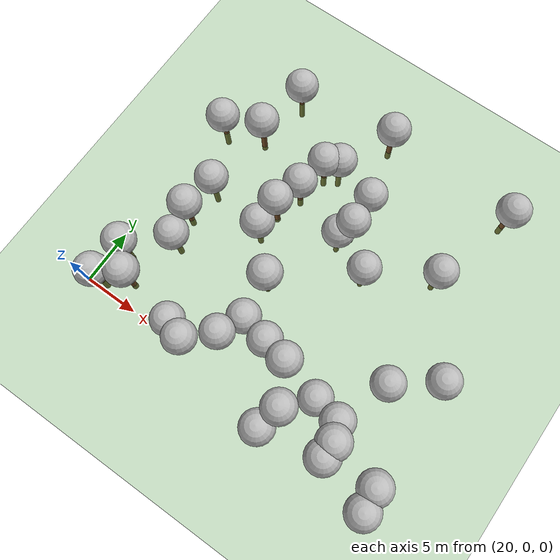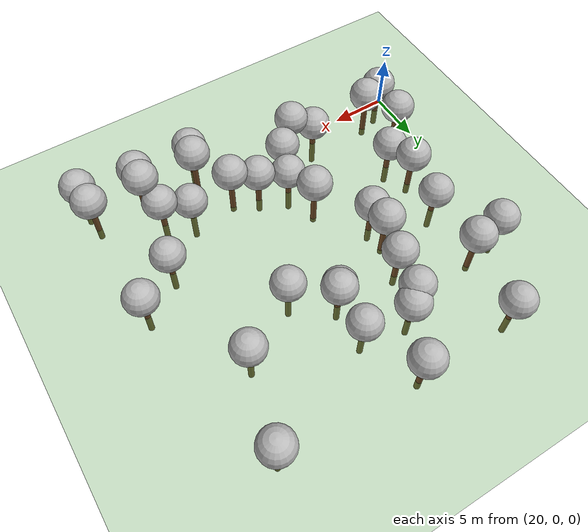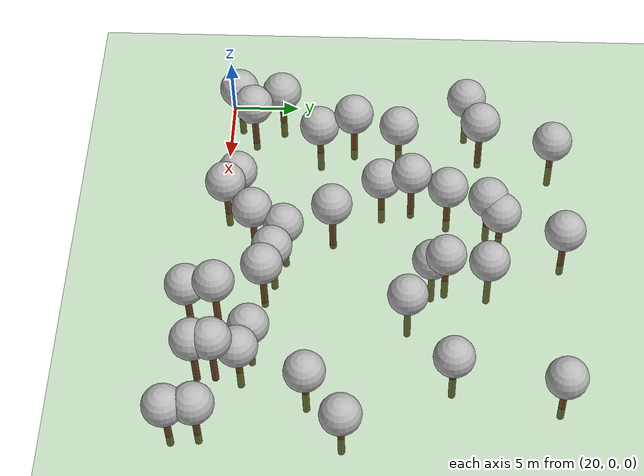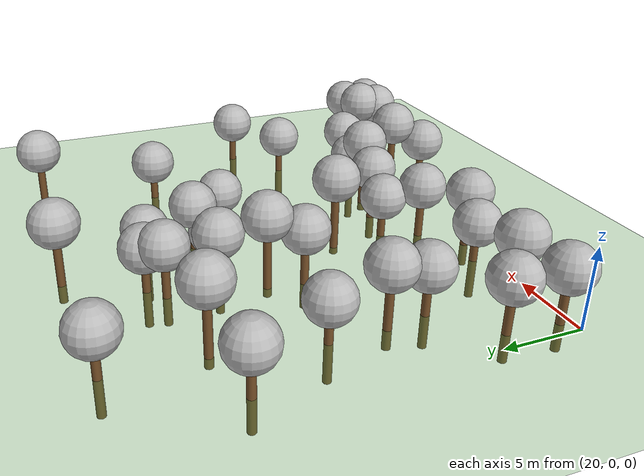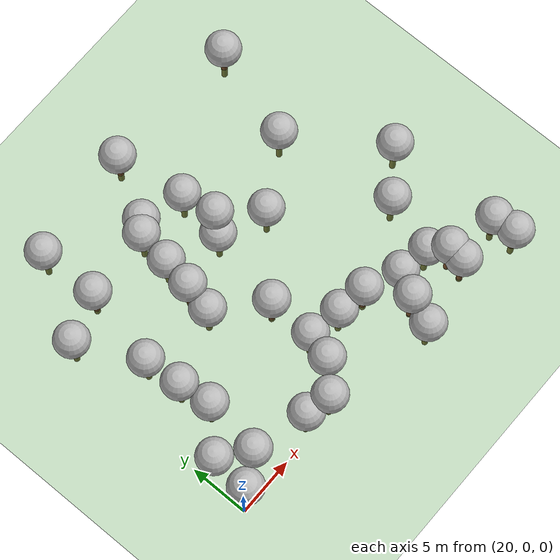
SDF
<sdf version="1.5">
 <world name="default">
  <model name="tree_simple499">
   <static>1</static>
   <link name="link">
    <pose>0 0 0.1 0 -0 0</pose>
    <collision name="collision_trunk">
     <pose>0 0 2 0 -0 0</pose>
     <geometry><cylinder><radius>0.25</radius><length>4</length></cylinder></geometry>
    </collision>
    <collision name="collision_treetop">
     <pose>0 0 5.2 0 -0 0</pose>
     <geometry><sphere><radius>1.5</radius></sphere></geometry>
    </collision>
    <visual name="trunk">
     <pose>0 0 2 0 -0 0</pose>
     <geometry><cylinder><radius>0.25</radius><length>4</length></cylinder></geometry>
     <material>
      <script>
       <uri>model://tree_simple/scripts</uri>
       <uri>model://tree_simple/materials/textures</uri>
       <name>TreeSimple/Trunk</name>
      </script>
     </material>
    </visual>
    <visual name="treetop">
     <pose>0 0 5.2 0 -0 0</pose>
     <geometry><sphere><radius>1.5</radius></sphere></geometry>
     <material>
      <script>
       <uri>model://tree_simple/scripts</uri>
       <uri>model://tree_simple/materials/textures</uri>
       <name>TreeSimple/Treetop</name>
      </script>
     </material>
    </visual>
   </link>
   <pose>49.5772894431 -0.301033806291 -1.388486694321096 0 -0 0</pose>
  </model>
  <model name="tree_simple490">
   <static>1</static>
   <link name="link">
    <pose>0 0 0.1 0 -0 0</pose>
    <collision name="collision_trunk">
     <pose>0 0 2 0 -0 0</pose>
     <geometry><cylinder><radius>0.25</radius><length>4</length></cylinder></geometry>
    </collision>
    <collision name="collision_treetop">
     <pose>0 0 5.2 0 -0 0</pose>
     <geometry><sphere><radius>1.5</radius></sphere></geometry>
    </collision>
    <visual name="trunk">
     <pose>0 0 2 0 -0 0</pose>
     <geometry><cylinder><radius>0.25</radius><length>4</length></cylinder></geometry>
     <material>
      <script>
       <uri>model://tree_simple/scripts</uri>
       <uri>model://tree_simple/materials/textures</uri>
       <name>TreeSimple/Trunk</name>
      </script>
     </material>
    </visual>
    <visual name="treetop">
     <pose>0 0 5.2 0 -0 0</pose>
     <geometry><sphere><radius>1.5</radius></sphere></geometry>
     <material>
      <script>
       <uri>model://tree_simple/scripts</uri>
       <uri>model://tree_simple/materials/textures</uri>
       <name>TreeSimple/Treetop</name>
      </script>
     </material>
    </visual>
   </link>
   <pose>28.486302093 0.994684244644 -2.7495407814083164 0 -0 0</pose>
  </model>
  <model name="tree_simple487">
   <static>1</static>
   <link name="link">
    <pose>0 0 0.1 0 -0 0</pose>
    <collision name="collision_trunk">
     <pose>0 0 2 0 -0 0</pose>
     <geometry><cylinder><radius>0.25</radius><length>4</length></cylinder></geometry>
    </collision>
    <collision name="collision_treetop">
     <pose>0 0 5.2 0 -0 0</pose>
     <geometry><sphere><radius>1.5</radius></sphere></geometry>
    </collision>
    <visual name="trunk">
     <pose>0 0 2 0 -0 0</pose>
     <geometry><cylinder><radius>0.25</radius><length>4</length></cylinder></geometry>
     <material>
      <script>
       <uri>model://tree_simple/scripts</uri>
       <uri>model://tree_simple/materials/textures</uri>
       <name>TreeSimple/Trunk</name>
      </script>
     </material>
    </visual>
    <visual name="treetop">
     <pose>0 0 5.2 0 -0 0</pose>
     <geometry><sphere><radius>1.5</radius></sphere></geometry>
     <material>
      <script>
       <uri>model://tree_simple/scripts</uri>
       <uri>model://tree_simple/materials/textures</uri>
       <name>TreeSimple/Treetop</name>
      </script>
     </material>
    </visual>
   </link>
   <pose>33.1280168764 8.35331864597 -0.5759778142481673 0 -0 0</pose>
  </model>
  <model name="tree_simple485">
   <static>1</static>
   <link name="link">
    <pose>0 0 0.1 0 -0 0</pose>
    <collision name="collision_trunk">
     <pose>0 0 2 0 -0 0</pose>
     <geometry><cylinder><radius>0.25</radius><length>4</length></cylinder></geometry>
    </collision>
    <collision name="collision_treetop">
     <pose>0 0 5.2 0 -0 0</pose>
     <geometry><sphere><radius>1.5</radius></sphere></geometry>
    </collision>
    <visual name="trunk">
     <pose>0 0 2 0 -0 0</pose>
     <geometry><cylinder><radius>0.25</radius><length>4</length></cylinder></geometry>
     <material>
      <script>
       <uri>model://tree_simple/scripts</uri>
       <uri>model://tree_simple/materials/textures</uri>
       <name>TreeSimple/Trunk</name>
      </script>
     </material>
    </visual>
    <visual name="treetop">
     <pose>0 0 5.2 0 -0 0</pose>
     <geometry><sphere><radius>1.5</radius></sphere></geometry>
     <material>
      <script>
       <uri>model://tree_simple/scripts</uri>
       <uri>model://tree_simple/materials/textures</uri>
       <name>TreeSimple/Treetop</name>
      </script>
     </material>
    </visual>
   </link>
   <pose>38.4673421664 3.60529435805 -0.7133389257745315 0 -0 0</pose>
  </model>
  <model name="tree_simple431">
   <static>1</static>
   <link name="link">
    <pose>0 0 0.1 0 -0 0</pose>
    <collision name="collision_trunk">
     <pose>0 0 2 0 -0 0</pose>
     <geometry><cylinder><radius>0.25</radius><length>4</length></cylinder></geometry>
    </collision>
    <collision name="collision_treetop">
     <pose>0 0 5.2 0 -0 0</pose>
     <geometry><sphere><radius>1.5</radius></sphere></geometry>
    </collision>
    <visual name="trunk">
     <pose>0 0 2 0 -0 0</pose>
     <geometry><cylinder><radius>0.25</radius><length>4</length></cylinder></geometry>
     <material>
      <script>
       <uri>model://tree_simple/scripts</uri>
       <uri>model://tree_simple/materials/textures</uri>
       <name>TreeSimple/Trunk</name>
      </script>
     </material>
    </visual>
    <visual name="treetop">
     <pose>0 0 5.2 0 -0 0</pose>
     <geometry><sphere><radius>1.5</radius></sphere></geometry>
     <material>
      <script>
       <uri>model://tree_simple/scripts</uri>
       <uri>model://tree_simple/materials/textures</uri>
       <name>TreeSimple/Treetop</name>
      </script>
     </material>
    </visual>
   </link>
   <pose>21.2091972338 3.93897030512 -1.9192809607115964 0 -0 0</pose>
  </model>
  <model name="tree_simple387">
   <static>1</static>
   <link name="link">
    <pose>0 0 0.1 0 -0 0</pose>
    <collision name="collision_trunk">
     <pose>0 0 2 0 -0 0</pose>
     <geometry><cylinder><radius>0.25</radius><length>4</length></cylinder></geometry>
    </collision>
    <collision name="collision_treetop">
     <pose>0 0 5.2 0 -0 0</pose>
     <geometry><sphere><radius>1.5</radius></sphere></geometry>
    </collision>
    <visual name="trunk">
     <pose>0 0 2 0 -0 0</pose>
     <geometry><cylinder><radius>0.25</radius><length>4</length></cylinder></geometry>
     <material>
      <script>
       <uri>model://tree_simple/scripts</uri>
       <uri>model://tree_simple/materials/textures</uri>
       <name>TreeSimple/Trunk</name>
      </script>
     </material>
    </visual>
    <visual name="treetop">
     <pose>0 0 5.2 0 -0 0</pose>
     <geometry><sphere><radius>1.5</radius></sphere></geometry>
     <material>
      <script>
       <uri>model://tree_simple/scripts</uri>
       <uri>model://tree_simple/materials/textures</uri>
       <name>TreeSimple/Treetop</name>
      </script>
     </material>
    </visual>
   </link>
   <pose>25.1584680938 24.780687948 -2.472355442723262 0 -0 0</pose>
  </model>
  <model name="tree_simple378">
   <static>1</static>
   <link name="link">
    <pose>0 0 0.1 0 -0 0</pose>
    <collision name="collision_trunk">
     <pose>0 0 2 0 -0 0</pose>
     <geometry><cylinder><radius>0.25</radius><length>4</length></cylinder></geometry>
    </collision>
    <collision name="collision_treetop">
     <pose>0 0 5.2 0 -0 0</pose>
     <geometry><sphere><radius>1.5</radius></sphere></geometry>
    </collision>
    <visual name="trunk">
     <pose>0 0 2 0 -0 0</pose>
     <geometry><cylinder><radius>0.25</radius><length>4</length></cylinder></geometry>
     <material>
      <script>
       <uri>model://tree_simple/scripts</uri>
       <uri>model://tree_simple/materials/textures</uri>
       <name>TreeSimple/Trunk</name>
      </script>
     </material>
    </visual>
    <visual name="treetop">
     <pose>0 0 5.2 0 -0 0</pose>
     <geometry><sphere><radius>1.5</radius></sphere></geometry>
     <material>
      <script>
       <uri>model://tree_simple/scripts</uri>
       <uri>model://tree_simple/materials/textures</uri>
       <name>TreeSimple/Treetop</name>
      </script>
     </material>
    </visual>
   </link>
   <pose>45.079812121 -0.754391736344 -0.48658778826792703 0 -0 0</pose>
  </model>
  <model name="tree_simple363">
   <static>1</static>
   <link name="link">
    <pose>0 0 0.1 0 -0 0</pose>
    <collision name="collision_trunk">
     <pose>0 0 2 0 -0 0</pose>
     <geometry><cylinder><radius>0.25</radius><length>4</length></cylinder></geometry>
    </collision>
    <collision name="collision_treetop">
     <pose>0 0 5.2 0 -0 0</pose>
     <geometry><sphere><radius>1.5</radius></sphere></geometry>
    </collision>
    <visual name="trunk">
     <pose>0 0 2 0 -0 0</pose>
     <geometry><cylinder><radius>0.25</radius><length>4</length></cylinder></geometry>
     <material>
      <script>
       <uri>model://tree_simple/scripts</uri>
       <uri>model://tree_simple/materials/textures</uri>
       <name>TreeSimple/Trunk</name>
      </script>
     </material>
    </visual>
    <visual name="treetop">
     <pose>0 0 5.2 0 -0 0</pose>
     <geometry><sphere><radius>1.5</radius></sphere></geometry>
     <material>
      <script>
       <uri>model://tree_simple/scripts</uri>
       <uri>model://tree_simple/materials/textures</uri>
       <name>TreeSimple/Treetop</name>
      </script>
     </material>
    </visual>
   </link>
   <pose>45.144398785 0.58220424318 -0.22807441102584058 0 -0 0</pose>
  </model>
  <model name="tree_simple354">
   <static>1</static>
   <link name="link">
    <pose>0 0 0.1 0 -0 0</pose>
    <collision name="collision_trunk">
     <pose>0 0 2 0 -0 0</pose>
     <geometry><cylinder><radius>0.25</radius><length>4</length></cylinder></geometry>
    </collision>
    <collision name="collision_treetop">
     <pose>0 0 5.2 0 -0 0</pose>
     <geometry><sphere><radius>1.5</radius></sphere></geometry>
    </collision>
    <visual name="trunk">
     <pose>0 0 2 0 -0 0</pose>
     <geometry><cylinder><radius>0.25</radius><length>4</length></cylinder></geometry>
     <material>
      <script>
       <uri>model://tree_simple/scripts</uri>
       <uri>model://tree_simple/materials/textures</uri>
       <name>TreeSimple/Trunk</name>
      </script>
     </material>
    </visual>
    <visual name="treetop">
     <pose>0 0 5.2 0 -0 0</pose>
     <geometry><sphere><radius>1.5</radius></sphere></geometry>
     <material>
      <script>
       <uri>model://tree_simple/scripts</uri>
       <uri>model://tree_simple/materials/textures</uri>
       <name>TreeSimple/Treetop</name>
      </script>
     </material>
    </visual>
   </link>
   <pose>32.6407591413 2.42607799047 -1.8177060401750025 0 -0 0</pose>
  </model>
  <model name="tree_simple335">
   <static>1</static>
   <link name="link">
    <pose>0 0 0.1 0 -0 0</pose>
    <collision name="collision_trunk">
     <pose>0 0 2 0 -0 0</pose>
     <geometry><cylinder><radius>0.25</radius><length>4</length></cylinder></geometry>
    </collision>
    <collision name="collision_treetop">
     <pose>0 0 5.2 0 -0 0</pose>
     <geometry><sphere><radius>1.5</radius></sphere></geometry>
    </collision>
    <visual name="trunk">
     <pose>0 0 2 0 -0 0</pose>
     <geometry><cylinder><radius>0.25</radius><length>4</length></cylinder></geometry>
     <material>
      <script>
       <uri>model://tree_simple/scripts</uri>
       <uri>model://tree_simple/materials/textures</uri>
       <name>TreeSimple/Trunk</name>
      </script>
     </material>
    </visual>
    <visual name="treetop">
     <pose>0 0 5.2 0 -0 0</pose>
     <geometry><sphere><radius>1.5</radius></sphere></geometry>
     <material>
      <script>
       <uri>model://tree_simple/scripts</uri>
       <uri>model://tree_simple/materials/textures</uri>
       <name>TreeSimple/Treetop</name>
      </script>
     </material>
    </visual>
   </link>
   <pose>34.5368026381 25.2759033923 -1.2895438060890456 0 -0 0</pose>
  </model>
  <model name="tree_simple315">
   <static>1</static>
   <link name="link">
    <pose>0 0 0.1 0 -0 0</pose>
    <collision name="collision_trunk">
     <pose>0 0 2 0 -0 0</pose>
     <geometry><cylinder><radius>0.25</radius><length>4</length></cylinder></geometry>
    </collision>
    <collision name="collision_treetop">
     <pose>0 0 5.2 0 -0 0</pose>
     <geometry><sphere><radius>1.5</radius></sphere></geometry>
    </collision>
    <visual name="trunk">
     <pose>0 0 2 0 -0 0</pose>
     <geometry><cylinder><radius>0.25</radius><length>4</length></cylinder></geometry>
     <material>
      <script>
       <uri>model://tree_simple/scripts</uri>
       <uri>model://tree_simple/materials/textures</uri>
       <name>TreeSimple/Trunk</name>
      </script>
     </material>
    </visual>
    <visual name="treetop">
     <pose>0 0 5.2 0 -0 0</pose>
     <geometry><sphere><radius>1.5</radius></sphere></geometry>
     <material>
      <script>
       <uri>model://tree_simple/scripts</uri>
       <uri>model://tree_simple/materials/textures</uri>
       <name>TreeSimple/Treetop</name>
      </script>
     </material>
    </visual>
   </link>
   <pose>20.9855205965 0.626463942169 -1.8909079098058819 0 -0 0</pose>
  </model>
  <model name="tree_simple297">
   <static>1</static>
   <link name="link">
    <pose>0 0 0.1 0 -0 0</pose>
    <collision name="collision_trunk">
     <pose>0 0 2 0 -0 0</pose>
     <geometry><cylinder><radius>0.25</radius><length>4</length></cylinder></geometry>
    </collision>
    <collision name="collision_treetop">
     <pose>0 0 5.2 0 -0 0</pose>
     <geometry><sphere><radius>1.5</radius></sphere></geometry>
    </collision>
    <visual name="trunk">
     <pose>0 0 2 0 -0 0</pose>
     <geometry><cylinder><radius>0.25</radius><length>4</length></cylinder></geometry>
     <material>
      <script>
       <uri>model://tree_simple/scripts</uri>
       <uri>model://tree_simple/materials/textures</uri>
       <name>TreeSimple/Trunk</name>
      </script>
     </material>
    </visual>
    <visual name="treetop">
     <pose>0 0 5.2 0 -0 0</pose>
     <geometry><sphere><radius>1.5</radius></sphere></geometry>
     <material>
      <script>
       <uri>model://tree_simple/scripts</uri>
       <uri>model://tree_simple/materials/textures</uri>
       <name>TreeSimple/Treetop</name>
      </script>
     </material>
    </visual>
   </link>
   <pose>30.5775161842 16.8175844191 -1.545121705573422 0 -0 0</pose>
  </model>
  <model name="tree_simple296">
   <static>1</static>
   <link name="link">
    <pose>0 0 0.1 0 -0 0</pose>
    <collision name="collision_trunk">
     <pose>0 0 2 0 -0 0</pose>
     <geometry><cylinder><radius>0.25</radius><length>4</length></cylinder></geometry>
    </collision>
    <collision name="collision_treetop">
     <pose>0 0 5.2 0 -0 0</pose>
     <geometry><sphere><radius>1.5</radius></sphere></geometry>
    </collision>
    <visual name="trunk">
     <pose>0 0 2 0 -0 0</pose>
     <geometry><cylinder><radius>0.25</radius><length>4</length></cylinder></geometry>
     <material>
      <script>
       <uri>model://tree_simple/scripts</uri>
       <uri>model://tree_simple/materials/textures</uri>
       <name>TreeSimple/Trunk</name>
      </script>
     </material>
    </visual>
    <visual name="treetop">
     <pose>0 0 5.2 0 -0 0</pose>
     <geometry><sphere><radius>1.5</radius></sphere></geometry>
     <material>
      <script>
       <uri>model://tree_simple/scripts</uri>
       <uri>model://tree_simple/materials/textures</uri>
       <name>TreeSimple/Treetop</name>
      </script>
     </material>
    </visual>
   </link>
   <pose>44.6267245304 17.3019041373 -2.631189561948907 0 -0 0</pose>
  </model>
  <model name="tree_simple293">
   <static>1</static>
   <link name="link">
    <pose>0 0 0.1 0 -0 0</pose>
    <collision name="collision_trunk">
     <pose>0 0 2 0 -0 0</pose>
     <geometry><cylinder><radius>0.25</radius><length>4</length></cylinder></geometry>
    </collision>
    <collision name="collision_treetop">
     <pose>0 0 5.2 0 -0 0</pose>
     <geometry><sphere><radius>1.5</radius></sphere></geometry>
    </collision>
    <visual name="trunk">
     <pose>0 0 2 0 -0 0</pose>
     <geometry><cylinder><radius>0.25</radius><length>4</length></cylinder></geometry>
     <material>
      <script>
       <uri>model://tree_simple/scripts</uri>
       <uri>model://tree_simple/materials/textures</uri>
       <name>TreeSimple/Trunk</name>
      </script>
     </material>
    </visual>
    <visual name="treetop">
     <pose>0 0 5.2 0 -0 0</pose>
     <geometry><sphere><radius>1.5</radius></sphere></geometry>
     <material>
      <script>
       <uri>model://tree_simple/scripts</uri>
       <uri>model://tree_simple/materials/textures</uri>
       <name>TreeSimple/Treetop</name>
      </script>
     </material>
    </visual>
   </link>
   <pose>23.4063524119 1.93979754522 -0.9589812540206897 0 -0 0</pose>
  </model>
  <model name="tree_simple283">
   <static>1</static>
   <link name="link">
    <pose>0 0 0.1 0 -0 0</pose>
    <collision name="collision_trunk">
     <pose>0 0 2 0 -0 0</pose>
     <geometry><cylinder><radius>0.25</radius><length>4</length></cylinder></geometry>
    </collision>
    <collision name="collision_treetop">
     <pose>0 0 5.2 0 -0 0</pose>
     <geometry><sphere><radius>1.5</radius></sphere></geometry>
    </collision>
    <visual name="trunk">
     <pose>0 0 2 0 -0 0</pose>
     <geometry><cylinder><radius>0.25</radius><length>4</length></cylinder></geometry>
     <material>
      <script>
       <uri>model://tree_simple/scripts</uri>
       <uri>model://tree_simple/materials/textures</uri>
       <name>TreeSimple/Trunk</name>
      </script>
     </material>
    </visual>
    <visual name="treetop">
     <pose>0 0 5.2 0 -0 0</pose>
     <geometry><sphere><radius>1.5</radius></sphere></geometry>
     <material>
      <script>
       <uri>model://tree_simple/scripts</uri>
       <uri>model://tree_simple/materials/textures</uri>
       <name>TreeSimple/Treetop</name>
      </script>
     </material>
    </visual>
   </link>
   <pose>39.1815186035 14.0237047255 -3.110190526950218 0 -0 0</pose>
  </model>
  <model name="tree_simple277">
   <static>1</static>
   <link name="link">
    <pose>0 0 0.1 0 -0 0</pose>
    <collision name="collision_trunk">
     <pose>0 0 2 0 -0 0</pose>
     <geometry><cylinder><radius>0.25</radius><length>4</length></cylinder></geometry>
    </collision>
    <collision name="collision_treetop">
     <pose>0 0 5.2 0 -0 0</pose>
     <geometry><sphere><radius>1.5</radius></sphere></geometry>
    </collision>
    <visual name="trunk">
     <pose>0 0 2 0 -0 0</pose>
     <geometry><cylinder><radius>0.25</radius><length>4</length></cylinder></geometry>
     <material>
      <script>
       <uri>model://tree_simple/scripts</uri>
       <uri>model://tree_simple/materials/textures</uri>
       <name>TreeSimple/Trunk</name>
      </script>
     </material>
    </visual>
    <visual name="treetop">
     <pose>0 0 5.2 0 -0 0</pose>
     <geometry><sphere><radius>1.5</radius></sphere></geometry>
     <material>
      <script>
       <uri>model://tree_simple/scripts</uri>
       <uri>model://tree_simple/materials/textures</uri>
       <name>TreeSimple/Treetop</name>
      </script>
     </material>
    </visual>
   </link>
   <pose>29.6986775877 11.8803123921 -1.7888371858774224 0 -0 0</pose>
  </model>
  <model name="tree_simple274">
   <static>1</static>
   <link name="link">
    <pose>0 0 0.1 0 -0 0</pose>
    <collision name="collision_trunk">
     <pose>0 0 2 0 -0 0</pose>
     <geometry><cylinder><radius>0.25</radius><length>4</length></cylinder></geometry>
    </collision>
    <collision name="collision_treetop">
     <pose>0 0 5.2 0 -0 0</pose>
     <geometry><sphere><radius>1.5</radius></sphere></geometry>
    </collision>
    <visual name="trunk">
     <pose>0 0 2 0 -0 0</pose>
     <geometry><cylinder><radius>0.25</radius><length>4</length></cylinder></geometry>
     <material>
      <script>
       <uri>model://tree_simple/scripts</uri>
       <uri>model://tree_simple/materials/textures</uri>
       <name>TreeSimple/Trunk</name>
      </script>
     </material>
    </visual>
    <visual name="treetop">
     <pose>0 0 5.2 0 -0 0</pose>
     <geometry><sphere><radius>1.5</radius></sphere></geometry>
     <material>
      <script>
       <uri>model://tree_simple/scripts</uri>
       <uri>model://tree_simple/materials/textures</uri>
       <name>TreeSimple/Treetop</name>
      </script>
     </material>
    </visual>
   </link>
   <pose>36.1444858675 4.12221392714 -1.7289040019219122 0 -0 0</pose>
  </model>
  <model name="tree_simple270">
   <static>1</static>
   <link name="link">
    <pose>0 0 0.1 0 -0 0</pose>
    <collision name="collision_trunk">
     <pose>0 0 2 0 -0 0</pose>
     <geometry><cylinder><radius>0.25</radius><length>4</length></cylinder></geometry>
    </collision>
    <collision name="collision_treetop">
     <pose>0 0 5.2 0 -0 0</pose>
     <geometry><sphere><radius>1.5</radius></sphere></geometry>
    </collision>
    <visual name="trunk">
     <pose>0 0 2 0 -0 0</pose>
     <geometry><cylinder><radius>0.25</radius><length>4</length></cylinder></geometry>
     <material>
      <script>
       <uri>model://tree_simple/scripts</uri>
       <uri>model://tree_simple/materials/textures</uri>
       <name>TreeSimple/Trunk</name>
      </script>
     </material>
    </visual>
    <visual name="treetop">
     <pose>0 0 5.2 0 -0 0</pose>
     <geometry><sphere><radius>1.5</radius></sphere></geometry>
     <material>
      <script>
       <uri>model://tree_simple/scripts</uri>
       <uri>model://tree_simple/materials/textures</uri>
       <name>TreeSimple/Treetop</name>
      </script>
     </material>
    </visual>
   </link>
   <pose>36.1848743211 16.7262379366 -2.3081737012049772 0 -0 0</pose>
  </model>
  <model name="tree_simple266">
   <static>1</static>
   <link name="link">
    <pose>0 0 0.1 0 -0 0</pose>
    <collision name="collision_trunk">
     <pose>0 0 2 0 -0 0</pose>
     <geometry><cylinder><radius>0.25</radius><length>4</length></cylinder></geometry>
    </collision>
    <collision name="collision_treetop">
     <pose>0 0 5.2 0 -0 0</pose>
     <geometry><sphere><radius>1.5</radius></sphere></geometry>
    </collision>
    <visual name="trunk">
     <pose>0 0 2 0 -0 0</pose>
     <geometry><cylinder><radius>0.25</radius><length>4</length></cylinder></geometry>
     <material>
      <script>
       <uri>model://tree_simple/scripts</uri>
       <uri>model://tree_simple/materials/textures</uri>
       <name>TreeSimple/Trunk</name>
      </script>
     </material>
    </visual>
    <visual name="treetop">
     <pose>0 0 5.2 0 -0 0</pose>
     <geometry><sphere><radius>1.5</radius></sphere></geometry>
     <material>
      <script>
       <uri>model://tree_simple/scripts</uri>
       <uri>model://tree_simple/materials/textures</uri>
       <name>TreeSimple/Treetop</name>
      </script>
     </material>
    </visual>
   </link>
   <pose>24.8758321483 19.2237149963 -0.7739536416042445 0 -0 0</pose>
  </model>
  <model name="tree_simple242">
   <static>1</static>
   <link name="link">
    <pose>0 0 0.1 0 -0 0</pose>
    <collision name="collision_trunk">
     <pose>0 0 2 0 -0 0</pose>
     <geometry><cylinder><radius>0.25</radius><length>4</length></cylinder></geometry>
    </collision>
    <collision name="collision_treetop">
     <pose>0 0 5.2 0 -0 0</pose>
     <geometry><sphere><radius>1.5</radius></sphere></geometry>
    </collision>
    <visual name="trunk">
     <pose>0 0 2 0 -0 0</pose>
     <geometry><cylinder><radius>0.25</radius><length>4</length></cylinder></geometry>
     <material>
      <script>
       <uri>model://tree_simple/scripts</uri>
       <uri>model://tree_simple/materials/textures</uri>
       <name>TreeSimple/Trunk</name>
      </script>
     </material>
    </visual>
    <visual name="treetop">
     <pose>0 0 5.2 0 -0 0</pose>
     <geometry><sphere><radius>1.5</radius></sphere></geometry>
     <material>
      <script>
       <uri>model://tree_simple/scripts</uri>
       <uri>model://tree_simple/materials/textures</uri>
       <name>TreeSimple/Treetop</name>
      </script>
     </material>
    </visual>
   </link>
   <pose>23.8093795921 9.61974989159 -1.3855117575499918 0 -0 0</pose>
  </model>
  <model name="tree_simple237">
   <static>1</static>
   <link name="link">
    <pose>0 0 0.1 0 -0 0</pose>
    <collision name="collision_trunk">
     <pose>0 0 2 0 -0 0</pose>
     <geometry><cylinder><radius>0.25</radius><length>4</length></cylinder></geometry>
    </collision>
    <collision name="collision_treetop">
     <pose>0 0 5.2 0 -0 0</pose>
     <geometry><sphere><radius>1.5</radius></sphere></geometry>
    </collision>
    <visual name="trunk">
     <pose>0 0 2 0 -0 0</pose>
     <geometry><cylinder><radius>0.25</radius><length>4</length></cylinder></geometry>
     <material>
      <script>
       <uri>model://tree_simple/scripts</uri>
       <uri>model://tree_simple/materials/textures</uri>
       <name>TreeSimple/Trunk</name>
      </script>
     </material>
    </visual>
    <visual name="treetop">
     <pose>0 0 5.2 0 -0 0</pose>
     <geometry><sphere><radius>1.5</radius></sphere></geometry>
     <material>
      <script>
       <uri>model://tree_simple/scripts</uri>
       <uri>model://tree_simple/materials/textures</uri>
       <name>TreeSimple/Treetop</name>
      </script>
     </material>
    </visual>
   </link>
   <pose>23.796461239 13.0760295483 -2.6443707540538997 0 -0 0</pose>
  </model>
  <model name="tree_simple219">
   <static>1</static>
   <link name="link">
    <pose>0 0 0.1 0 -0 0</pose>
    <collision name="collision_trunk">
     <pose>0 0 2 0 -0 0</pose>
     <geometry><cylinder><radius>0.25</radius><length>4</length></cylinder></geometry>
    </collision>
    <collision name="collision_treetop">
     <pose>0 0 5.2 0 -0 0</pose>
     <geometry><sphere><radius>1.5</radius></sphere></geometry>
    </collision>
    <visual name="trunk">
     <pose>0 0 2 0 -0 0</pose>
     <geometry><cylinder><radius>0.25</radius><length>4</length></cylinder></geometry>
     <material>
      <script>
       <uri>model://tree_simple/scripts</uri>
       <uri>model://tree_simple/materials/textures</uri>
       <name>TreeSimple/Trunk</name>
      </script>
     </material>
    </visual>
    <visual name="treetop">
     <pose>0 0 5.2 0 -0 0</pose>
     <geometry><sphere><radius>1.5</radius></sphere></geometry>
     <material>
      <script>
       <uri>model://tree_simple/scripts</uri>
       <uri>model://tree_simple/materials/textures</uri>
       <name>TreeSimple/Treetop</name>
      </script>
     </material>
    </visual>
   </link>
   <pose>32.089947678 20.7584358719 -2.508096174727455 0 -0 0</pose>
  </model>
  <model name="tree_simple217">
   <static>1</static>
   <link name="link">
    <pose>0 0 0.1 0 -0 0</pose>
    <collision name="collision_trunk">
     <pose>0 0 2 0 -0 0</pose>
     <geometry><cylinder><radius>0.25</radius><length>4</length></cylinder></geometry>
    </collision>
    <collision name="collision_treetop">
     <pose>0 0 5.2 0 -0 0</pose>
     <geometry><sphere><radius>1.5</radius></sphere></geometry>
    </collision>
    <visual name="trunk">
     <pose>0 0 2 0 -0 0</pose>
     <geometry><cylinder><radius>0.25</radius><length>4</length></cylinder></geometry>
     <material>
      <script>
       <uri>model://tree_simple/scripts</uri>
       <uri>model://tree_simple/materials/textures</uri>
       <name>TreeSimple/Trunk</name>
      </script>
     </material>
    </visual>
    <visual name="treetop">
     <pose>0 0 5.2 0 -0 0</pose>
     <geometry><sphere><radius>1.5</radius></sphere></geometry>
     <material>
      <script>
       <uri>model://tree_simple/scripts</uri>
       <uri>model://tree_simple/materials/textures</uri>
       <name>TreeSimple/Treetop</name>
      </script>
     </material>
    </visual>
   </link>
   <pose>49.7701486167 -2.25839681325 -1.433152533279539 0 -0 0</pose>
  </model>
  <model name="tree_simple216">
   <static>1</static>
   <link name="link">
    <pose>0 0 0.1 0 -0 0</pose>
    <collision name="collision_trunk">
     <pose>0 0 2 0 -0 0</pose>
     <geometry><cylinder><radius>0.25</radius><length>4</length></cylinder></geometry>
    </collision>
    <collision name="collision_treetop">
     <pose>0 0 5.2 0 -0 0</pose>
     <geometry><sphere><radius>1.5</radius></sphere></geometry>
    </collision>
    <visual name="trunk">
     <pose>0 0 2 0 -0 0</pose>
     <geometry><cylinder><radius>0.25</radius><length>4</length></cylinder></geometry>
     <material>
      <script>
       <uri>model://tree_simple/scripts</uri>
       <uri>model://tree_simple/materials/textures</uri>
       <name>TreeSimple/Trunk</name>
      </script>
     </material>
    </visual>
    <visual name="treetop">
     <pose>0 0 5.2 0 -0 0</pose>
     <geometry><sphere><radius>1.5</radius></sphere></geometry>
     <material>
      <script>
       <uri>model://tree_simple/scripts</uri>
       <uri>model://tree_simple/materials/textures</uri>
       <name>TreeSimple/Treetop</name>
      </script>
     </material>
    </visual>
   </link>
   <pose>46.7848412988 24.905742282 -1.5376547663518139 0 -0 0</pose>
  </model>
  <model name="tree_simple188">
   <static>1</static>
   <link name="link">
    <pose>0 0 0.1 0 -0 0</pose>
    <collision name="collision_trunk">
     <pose>0 0 2 0 -0 0</pose>
     <geometry><cylinder><radius>0.25</radius><length>4</length></cylinder></geometry>
    </collision>
    <collision name="collision_treetop">
     <pose>0 0 5.2 0 -0 0</pose>
     <geometry><sphere><radius>1.5</radius></sphere></geometry>
    </collision>
    <visual name="trunk">
     <pose>0 0 2 0 -0 0</pose>
     <geometry><cylinder><radius>0.25</radius><length>4</length></cylinder></geometry>
     <material>
      <script>
       <uri>model://tree_simple/scripts</uri>
       <uri>model://tree_simple/materials/textures</uri>
       <name>TreeSimple/Trunk</name>
      </script>
     </material>
    </visual>
    <visual name="treetop">
     <pose>0 0 5.2 0 -0 0</pose>
     <geometry><sphere><radius>1.5</radius></sphere></geometry>
     <material>
      <script>
       <uri>model://tree_simple/scripts</uri>
       <uri>model://tree_simple/materials/textures</uri>
       <name>TreeSimple/Treetop</name>
      </script>
     </material>
    </visual>
   </link>
   <pose>31.0766060016 19.8231593676 -1.9892473467155136 0 -0 0</pose>
  </model>
  <model name="tree_simple151">
   <static>1</static>
   <link name="link">
    <pose>0 0 0.1 0 -0 0</pose>
    <collision name="collision_trunk">
     <pose>0 0 2 0 -0 0</pose>
     <geometry><cylinder><radius>0.25</radius><length>4</length></cylinder></geometry>
    </collision>
    <collision name="collision_treetop">
     <pose>0 0 5.2 0 -0 0</pose>
     <geometry><sphere><radius>1.5</radius></sphere></geometry>
    </collision>
    <visual name="trunk">
     <pose>0 0 2 0 -0 0</pose>
     <geometry><cylinder><radius>0.25</radius><length>4</length></cylinder></geometry>
     <material>
      <script>
       <uri>model://tree_simple/scripts</uri>
       <uri>model://tree_simple/materials/textures</uri>
       <name>TreeSimple/Trunk</name>
      </script>
     </material>
    </visual>
    <visual name="treetop">
     <pose>0 0 5.2 0 -0 0</pose>
     <geometry><sphere><radius>1.5</radius></sphere></geometry>
     <material>
      <script>
       <uri>model://tree_simple/scripts</uri>
       <uri>model://tree_simple/materials/textures</uri>
       <name>TreeSimple/Treetop</name>
      </script>
     </material>
    </visual>
   </link>
   <pose>44.4996407391 2.22143393779 -2.1651690681826934 0 -0 0</pose>
  </model>
  <model name="tree_simple147">
   <static>1</static>
   <link name="link">
    <pose>0 0 0.1 0 -0 0</pose>
    <collision name="collision_trunk">
     <pose>0 0 2 0 -0 0</pose>
     <geometry><cylinder><radius>0.25</radius><length>4</length></cylinder></geometry>
    </collision>
    <collision name="collision_treetop">
     <pose>0 0 5.2 0 -0 0</pose>
     <geometry><sphere><radius>1.5</radius></sphere></geometry>
    </collision>
    <visual name="trunk">
     <pose>0 0 2 0 -0 0</pose>
     <geometry><cylinder><radius>0.25</radius><length>4</length></cylinder></geometry>
     <material>
      <script>
       <uri>model://tree_simple/scripts</uri>
       <uri>model://tree_simple/materials/textures</uri>
       <name>TreeSimple/Trunk</name>
      </script>
     </material>
    </visual>
    <visual name="treetop">
     <pose>0 0 5.2 0 -0 0</pose>
     <geometry><sphere><radius>1.5</radius></sphere></geometry>
     <material>
      <script>
       <uri>model://tree_simple/scripts</uri>
       <uri>model://tree_simple/materials/textures</uri>
       <name>TreeSimple/Treetop</name>
      </script>
     </material>
    </visual>
   </link>
   <pose>35.3937687519 15.7697149942 -4.0 0 -0 0</pose>
  </model>
  <model name="tree_simple125">
   <static>1</static>
   <link name="link">
    <pose>0 0 0.1 0 -0 0</pose>
    <collision name="collision_trunk">
     <pose>0 0 2 0 -0 0</pose>
     <geometry><cylinder><radius>0.25</radius><length>4</length></cylinder></geometry>
    </collision>
    <collision name="collision_treetop">
     <pose>0 0 5.2 0 -0 0</pose>
     <geometry><sphere><radius>1.5</radius></sphere></geometry>
    </collision>
    <visual name="trunk">
     <pose>0 0 2 0 -0 0</pose>
     <geometry><cylinder><radius>0.25</radius><length>4</length></cylinder></geometry>
     <material>
      <script>
       <uri>model://tree_simple/scripts</uri>
       <uri>model://tree_simple/materials/textures</uri>
       <name>TreeSimple/Trunk</name>
      </script>
     </material>
    </visual>
    <visual name="treetop">
     <pose>0 0 5.2 0 -0 0</pose>
     <geometry><sphere><radius>1.5</radius></sphere></geometry>
     <material>
      <script>
       <uri>model://tree_simple/scripts</uri>
       <uri>model://tree_simple/materials/textures</uri>
       <name>TreeSimple/Treetop</name>
      </script>
     </material>
    </visual>
   </link>
   <pose>49.6376718654 9.60982885919 -2.2724062004144887 0 -0 0</pose>
  </model>
  <model name="tree_simple101">
   <static>1</static>
   <link name="link">
    <pose>0 0 0.1 0 -0 0</pose>
    <collision name="collision_trunk">
     <pose>0 0 2 0 -0 0</pose>
     <geometry><cylinder><radius>0.25</radius><length>4</length></cylinder></geometry>
    </collision>
    <collision name="collision_treetop">
     <pose>0 0 5.2 0 -0 0</pose>
     <geometry><sphere><radius>1.5</radius></sphere></geometry>
    </collision>
    <visual name="trunk">
     <pose>0 0 2 0 -0 0</pose>
     <geometry><cylinder><radius>0.25</radius><length>4</length></cylinder></geometry>
     <material>
      <script>
       <uri>model://tree_simple/scripts</uri>
       <uri>model://tree_simple/materials/textures</uri>
       <name>TreeSimple/Trunk</name>
      </script>
     </material>
    </visual>
    <visual name="treetop">
     <pose>0 0 5.2 0 -0 0</pose>
     <geometry><sphere><radius>1.5</radius></sphere></geometry>
     <material>
      <script>
       <uri>model://tree_simple/scripts</uri>
       <uri>model://tree_simple/materials/textures</uri>
       <name>TreeSimple/Treetop</name>
      </script>
     </material>
    </visual>
   </link>
   <pose>30.4497487196 0.325840967223 -1.6120955304325286 0 -0 0</pose>
  </model>
  <model name="tree_simple88">
   <static>1</static>
   <link name="link">
    <pose>0 0 0.1 0 -0 0</pose>
    <collision name="collision_trunk">
     <pose>0 0 2 0 -0 0</pose>
     <geometry><cylinder><radius>0.25</radius><length>4</length></cylinder></geometry>
    </collision>
    <collision name="collision_treetop">
     <pose>0 0 5.2 0 -0 0</pose>
     <geometry><sphere><radius>1.5</radius></sphere></geometry>
    </collision>
    <visual name="trunk">
     <pose>0 0 2 0 -0 0</pose>
     <geometry><cylinder><radius>0.25</radius><length>4</length></cylinder></geometry>
     <material>
      <script>
       <uri>model://tree_simple/scripts</uri>
       <uri>model://tree_simple/materials/textures</uri>
       <name>TreeSimple/Trunk</name>
      </script>
     </material>
    </visual>
    <visual name="treetop">
     <pose>0 0 5.2 0 -0 0</pose>
     <geometry><sphere><radius>1.5</radius></sphere></geometry>
     <material>
      <script>
       <uri>model://tree_simple/scripts</uri>
       <uri>model://tree_simple/materials/textures</uri>
       <name>TreeSimple/Treetop</name>
      </script>
     </material>
    </visual>
   </link>
   <pose>30.0100540879 14.1017102657 -0.6922380066945115 0 -0 0</pose>
  </model>
  <model name="tree_simple82">
   <static>1</static>
   <link name="link">
    <pose>0 0 0.1 0 -0 0</pose>
    <collision name="collision_trunk">
     <pose>0 0 2 0 -0 0</pose>
     <geometry><cylinder><radius>0.25</radius><length>4</length></cylinder></geometry>
    </collision>
    <collision name="collision_treetop">
     <pose>0 0 5.2 0 -0 0</pose>
     <geometry><sphere><radius>1.5</radius></sphere></geometry>
    </collision>
    <visual name="trunk">
     <pose>0 0 2 0 -0 0</pose>
     <geometry><cylinder><radius>0.25</radius><length>4</length></cylinder></geometry>
     <material>
      <script>
       <uri>model://tree_simple/scripts</uri>
       <uri>model://tree_simple/materials/textures</uri>
       <name>TreeSimple/Trunk</name>
      </script>
     </material>
    </visual>
    <visual name="treetop">
     <pose>0 0 5.2 0 -0 0</pose>
     <geometry><sphere><radius>1.5</radius></sphere></geometry>
     <material>
      <script>
       <uri>model://tree_simple/scripts</uri>
       <uri>model://tree_simple/materials/textures</uri>
       <name>TreeSimple/Treetop</name>
      </script>
     </material>
    </visual>
   </link>
   <pose>42.0261591118 2.77520756708 -3.097063697936518 0 -0 0</pose>
  </model>
  <model name="tree_simple69">
   <static>1</static>
   <link name="link">
    <pose>0 0 0.1 0 -0 0</pose>
    <collision name="collision_trunk">
     <pose>0 0 2 0 -0 0</pose>
     <geometry><cylinder><radius>0.25</radius><length>4</length></cylinder></geometry>
    </collision>
    <collision name="collision_treetop">
     <pose>0 0 5.2 0 -0 0</pose>
     <geometry><sphere><radius>1.5</radius></sphere></geometry>
    </collision>
    <visual name="trunk">
     <pose>0 0 2 0 -0 0</pose>
     <geometry><cylinder><radius>0.25</radius><length>4</length></cylinder></geometry>
     <material>
      <script>
       <uri>model://tree_simple/scripts</uri>
       <uri>model://tree_simple/materials/textures</uri>
       <name>TreeSimple/Trunk</name>
      </script>
     </material>
    </visual>
    <visual name="treetop">
     <pose>0 0 5.2 0 -0 0</pose>
     <geometry><sphere><radius>1.5</radius></sphere></geometry>
     <material>
      <script>
       <uri>model://tree_simple/scripts</uri>
       <uri>model://tree_simple/materials/textures</uri>
       <name>TreeSimple/Treetop</name>
      </script>
     </material>
    </visual>
   </link>
   <pose>24.2740605354 7.00706746043 -2.264266437140273 0 -0 0</pose>
  </model>
  <model name="tree_simple54">
   <static>1</static>
   <link name="link">
    <pose>0 0 0.1 0 -0 0</pose>
    <collision name="collision_trunk">
     <pose>0 0 2 0 -0 0</pose>
     <geometry><cylinder><radius>0.25</radius><length>4</length></cylinder></geometry>
    </collision>
    <collision name="collision_treetop">
     <pose>0 0 5.2 0 -0 0</pose>
     <geometry><sphere><radius>1.5</radius></sphere></geometry>
    </collision>
    <visual name="trunk">
     <pose>0 0 2 0 -0 0</pose>
     <geometry><cylinder><radius>0.25</radius><length>4</length></cylinder></geometry>
     <material>
      <script>
       <uri>model://tree_simple/scripts</uri>
       <uri>model://tree_simple/materials/textures</uri>
       <name>TreeSimple/Trunk</name>
      </script>
     </material>
    </visual>
    <visual name="treetop">
     <pose>0 0 5.2 0 -0 0</pose>
     <geometry><sphere><radius>1.5</radius></sphere></geometry>
     <material>
      <script>
       <uri>model://tree_simple/scripts</uri>
       <uri>model://tree_simple/materials/textures</uri>
       <name>TreeSimple/Treetop</name>
      </script>
     </material>
    </visual>
   </link>
   <pose>40.2707740498 0.36304299765 -0.3840677885108934 0 -0 0</pose>
  </model>
  <model name="tree_simple46">
   <static>1</static>
   <link name="link">
    <pose>0 0 0.1 0 -0 0</pose>
    <collision name="collision_trunk">
     <pose>0 0 2 0 -0 0</pose>
     <geometry><cylinder><radius>0.25</radius><length>4</length></cylinder></geometry>
    </collision>
    <collision name="collision_treetop">
     <pose>0 0 5.2 0 -0 0</pose>
     <geometry><sphere><radius>1.5</radius></sphere></geometry>
    </collision>
    <visual name="trunk">
     <pose>0 0 2 0 -0 0</pose>
     <geometry><cylinder><radius>0.25</radius><length>4</length></cylinder></geometry>
     <material>
      <script>
       <uri>model://tree_simple/scripts</uri>
       <uri>model://tree_simple/materials/textures</uri>
       <name>TreeSimple/Trunk</name>
      </script>
     </material>
    </visual>
    <visual name="treetop">
     <pose>0 0 5.2 0 -0 0</pose>
     <geometry><sphere><radius>1.5</radius></sphere></geometry>
     <material>
      <script>
       <uri>model://tree_simple/scripts</uri>
       <uri>model://tree_simple/materials/textures</uri>
       <name>TreeSimple/Treetop</name>
      </script>
     </material>
    </visual>
   </link>
   <pose>35.9376574388 19.9099598652 -3.2707435069876687 0 -0 0</pose>
  </model>
  <model name="tree_simple45">
   <static>1</static>
   <link name="link">
    <pose>0 0 0.1 0 -0 0</pose>
    <collision name="collision_trunk">
     <pose>0 0 2 0 -0 0</pose>
     <geometry><cylinder><radius>0.25</radius><length>4</length></cylinder></geometry>
    </collision>
    <collision name="collision_treetop">
     <pose>0 0 5.2 0 -0 0</pose>
     <geometry><sphere><radius>1.5</radius></sphere></geometry>
    </collision>
    <visual name="trunk">
     <pose>0 0 2 0 -0 0</pose>
     <geometry><cylinder><radius>0.25</radius><length>4</length></cylinder></geometry>
     <material>
      <script>
       <uri>model://tree_simple/scripts</uri>
       <uri>model://tree_simple/materials/textures</uri>
       <name>TreeSimple/Trunk</name>
      </script>
     </material>
    </visual>
    <visual name="treetop">
     <pose>0 0 5.2 0 -0 0</pose>
     <geometry><sphere><radius>1.5</radius></sphere></geometry>
     <material>
      <script>
       <uri>model://tree_simple/scripts</uri>
       <uri>model://tree_simple/materials/textures</uri>
       <name>TreeSimple/Treetop</name>
      </script>
     </material>
    </visual>
   </link>
   <pose>33.4753312088 4.75995445327 -2.554123687185312 0 -0 0</pose>
  </model>
  <model name="tree_simple20">
   <static>1</static>
   <link name="link">
    <pose>0 0 0.1 0 -0 0</pose>
    <collision name="collision_trunk">
     <pose>0 0 2 0 -0 0</pose>
     <geometry><cylinder><radius>0.25</radius><length>4</length></cylinder></geometry>
    </collision>
    <collision name="collision_treetop">
     <pose>0 0 5.2 0 -0 0</pose>
     <geometry><sphere><radius>1.5</radius></sphere></geometry>
    </collision>
    <visual name="trunk">
     <pose>0 0 2 0 -0 0</pose>
     <geometry><cylinder><radius>0.25</radius><length>4</length></cylinder></geometry>
     <material>
      <script>
       <uri>model://tree_simple/scripts</uri>
       <uri>model://tree_simple/materials/textures</uri>
       <name>TreeSimple/Trunk</name>
      </script>
     </material>
    </visual>
    <visual name="treetop">
     <pose>0 0 5.2 0 -0 0</pose>
     <geometry><sphere><radius>1.5</radius></sphere></geometry>
     <material>
      <script>
       <uri>model://tree_simple/scripts</uri>
       <uri>model://tree_simple/materials/textures</uri>
       <name>TreeSimple/Treetop</name>
      </script>
     </material>
    </visual>
   </link>
   <pose>21.1901136625 18.261917312 -2.2393584355714555 0 -0 0</pose>
  </model>
  <model name="tree_simple19">
   <static>1</static>
   <link name="link">
    <pose>0 0 0.1 0 -0 0</pose>
    <collision name="collision_trunk">
     <pose>0 0 2 0 -0 0</pose>
     <geometry><cylinder><radius>0.25</radius><length>4</length></cylinder></geometry>
    </collision>
    <collision name="collision_treetop">
     <pose>0 0 5.2 0 -0 0</pose>
     <geometry><sphere><radius>1.5</radius></sphere></geometry>
    </collision>
    <visual name="trunk">
     <pose>0 0 2 0 -0 0</pose>
     <geometry><cylinder><radius>0.25</radius><length>4</length></cylinder></geometry>
     <material>
      <script>
       <uri>model://tree_simple/scripts</uri>
       <uri>model://tree_simple/materials/textures</uri>
       <name>TreeSimple/Trunk</name>
      </script>
     </material>
    </visual>
    <visual name="treetop">
     <pose>0 0 5.2 0 -0 0</pose>
     <geometry><sphere><radius>1.5</radius></sphere></geometry>
     <material>
      <script>
       <uri>model://tree_simple/scripts</uri>
       <uri>model://tree_simple/materials/textures</uri>
       <name>TreeSimple/Treetop</name>
      </script>
     </material>
    </visual>
   </link>
   <pose>39.6710404754 -1.77882210198 -1.7509256653155325 0 -0 0</pose>
  </model>
  <model name="tree_simple12">
   <static>1</static>
   <link name="link">
    <pose>0 0 0.1 0 -0 0</pose>
    <collision name="collision_trunk">
     <pose>0 0 2 0 -0 0</pose>
     <geometry><cylinder><radius>0.25</radius><length>4</length></cylinder></geometry>
    </collision>
    <collision name="collision_treetop">
     <pose>0 0 5.2 0 -0 0</pose>
     <geometry><sphere><radius>1.5</radius></sphere></geometry>
    </collision>
    <visual name="trunk">
     <pose>0 0 2 0 -0 0</pose>
     <geometry><cylinder><radius>0.25</radius><length>4</length></cylinder></geometry>
     <material>
      <script>
       <uri>model://tree_simple/scripts</uri>
       <uri>model://tree_simple/materials/textures</uri>
       <name>TreeSimple/Trunk</name>
      </script>
     </material>
    </visual>
    <visual name="treetop">
     <pose>0 0 5.2 0 -0 0</pose>
     <geometry><sphere><radius>1.5</radius></sphere></geometry>
     <material>
      <script>
       <uri>model://tree_simple/scripts</uri>
       <uri>model://tree_simple/materials/textures</uri>
       <name>TreeSimple/Treetop</name>
      </script>
     </material>
    </visual>
   </link>
   <pose>46.1246254141 6.97446831658 -2.5799812193455476 0 -0 0</pose>
  </model>
  <model name="ground_plane">
   <static>true</static>
   <link name="link">
    <collision name="collision">
     <geometry><plane><normal>0 0 1</normal><size>250 250</size></plane></geometry>
     <surface><friction><ode><mu>1</mu><mu2>1</mu2></ode></friction></surface>
    </collision>
    <visual name="grass">
     <cast_shadows>false</cast_shadows>
     <geometry><plane><normal>0 0 1</normal><size>150 250</size></plane></geometry>
     <material>
      <script><uri>file://media/materials/scripts/Gazebo.material</uri><name>Gazebo/Grass</name></script>
     </material>
    </visual>
   </link>
  </model>
 </world>
</sdf>
